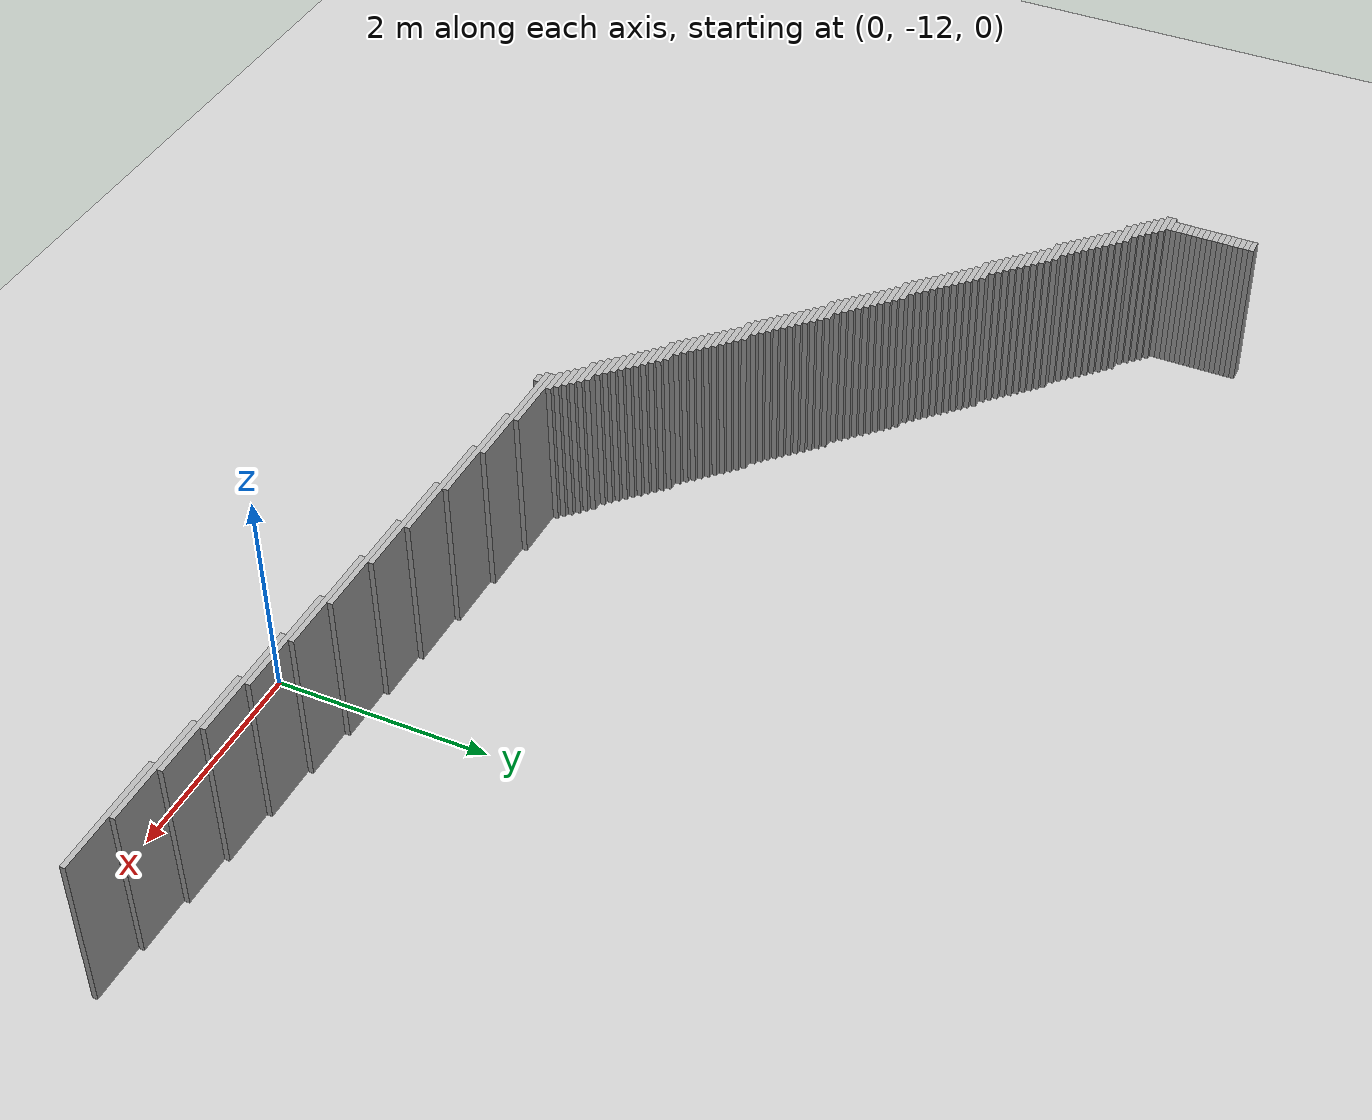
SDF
<sdf version="1.6">
 <world name="df_walled">
  <include><uri>model://sun</uri></include>
  <include><uri>model://ground_plane</uri></include>
  <model name="df_walls">
   <static>true</static>
   <link name="wall_00579">
    <pose>-7.4860 -5.9090 0.7500 0 0 0</pose>
    <collision name="col"><geometry><box><size>0.1500 0.0500 1.5000</size></box></geometry></collision>
    <visual name="vis">
     <geometry><box><size>0.1500 0.0500 1.5000</size></box></geometry>
     <material><ambient>0.5 0.5 0.5 1</ambient><diffuse>0.7 0.7 0.7 1</diffuse></material>
    </visual>
   </link>
   <link name="wall_00581">
    <pose>-7.4860 -5.9590 0.7500 0 0 0</pose>
    <collision name="col"><geometry><box><size>0.1500 0.0500 1.5000</size></box></geometry></collision>
    <visual name="vis">
     <geometry><box><size>0.1500 0.0500 1.5000</size></box></geometry>
     <material><ambient>0.5 0.5 0.5 1</ambient><diffuse>0.7 0.7 0.7 1</diffuse></material>
    </visual>
   </link>
   <link name="wall_00583">
    <pose>-7.4860 -6.0090 0.7500 0 0 0</pose>
    <collision name="col"><geometry><box><size>0.1500 0.0500 1.5000</size></box></geometry></collision>
    <visual name="vis">
     <geometry><box><size>0.1500 0.0500 1.5000</size></box></geometry>
     <material><ambient>0.5 0.5 0.5 1</ambient><diffuse>0.7 0.7 0.7 1</diffuse></material>
    </visual>
   </link>
   <link name="wall_00585">
    <pose>-7.4860 -6.0590 0.7500 0 0 0</pose>
    <collision name="col"><geometry><box><size>0.1500 0.0500 1.5000</size></box></geometry></collision>
    <visual name="vis">
     <geometry><box><size>0.1500 0.0500 1.5000</size></box></geometry>
     <material><ambient>0.5 0.5 0.5 1</ambient><diffuse>0.7 0.7 0.7 1</diffuse></material>
    </visual>
   </link>
   <link name="wall_00587">
    <pose>-7.4860 -6.1090 0.7500 0 0 0</pose>
    <collision name="col"><geometry><box><size>0.1500 0.0500 1.5000</size></box></geometry></collision>
    <visual name="vis">
     <geometry><box><size>0.1500 0.0500 1.5000</size></box></geometry>
     <material><ambient>0.5 0.5 0.5 1</ambient><diffuse>0.7 0.7 0.7 1</diffuse></material>
    </visual>
   </link>
   <link name="wall_00589">
    <pose>-7.4860 -6.1590 0.7500 0 0 0</pose>
    <collision name="col"><geometry><box><size>0.1500 0.0500 1.5000</size></box></geometry></collision>
    <visual name="vis">
     <geometry><box><size>0.1500 0.0500 1.5000</size></box></geometry>
     <material><ambient>0.5 0.5 0.5 1</ambient><diffuse>0.7 0.7 0.7 1</diffuse></material>
    </visual>
   </link>
   <link name="wall_00591">
    <pose>-7.4860 -6.2090 0.7500 0 0 0</pose>
    <collision name="col"><geometry><box><size>0.1500 0.0500 1.5000</size></box></geometry></collision>
    <visual name="vis">
     <geometry><box><size>0.1500 0.0500 1.5000</size></box></geometry>
     <material><ambient>0.5 0.5 0.5 1</ambient><diffuse>0.7 0.7 0.7 1</diffuse></material>
    </visual>
   </link>
   <link name="wall_00593">
    <pose>-7.4860 -6.2590 0.7500 0 0 0</pose>
    <collision name="col"><geometry><box><size>0.1500 0.0500 1.5000</size></box></geometry></collision>
    <visual name="vis">
     <geometry><box><size>0.1500 0.0500 1.5000</size></box></geometry>
     <material><ambient>0.5 0.5 0.5 1</ambient><diffuse>0.7 0.7 0.7 1</diffuse></material>
    </visual>
   </link>
   <link name="wall_00595">
    <pose>-7.4860 -6.3090 0.7500 0 0 0</pose>
    <collision name="col"><geometry><box><size>0.1500 0.0500 1.5000</size></box></geometry></collision>
    <visual name="vis">
     <geometry><box><size>0.1500 0.0500 1.5000</size></box></geometry>
     <material><ambient>0.5 0.5 0.5 1</ambient><diffuse>0.7 0.7 0.7 1</diffuse></material>
    </visual>
   </link>
   <link name="wall_00597">
    <pose>-7.4860 -6.3590 0.7500 0 0 0</pose>
    <collision name="col"><geometry><box><size>0.1500 0.0500 1.5000</size></box></geometry></collision>
    <visual name="vis">
     <geometry><box><size>0.1500 0.0500 1.5000</size></box></geometry>
     <material><ambient>0.5 0.5 0.5 1</ambient><diffuse>0.7 0.7 0.7 1</diffuse></material>
    </visual>
   </link>
   <link name="wall_00599">
    <pose>-7.4860 -6.4090 0.7500 0 0 0</pose>
    <collision name="col"><geometry><box><size>0.1500 0.0500 1.5000</size></box></geometry></collision>
    <visual name="vis">
     <geometry><box><size>0.1500 0.0500 1.5000</size></box></geometry>
     <material><ambient>0.5 0.5 0.5 1</ambient><diffuse>0.7 0.7 0.7 1</diffuse></material>
    </visual>
   </link>
   <link name="wall_00601">
    <pose>-7.4860 -6.4590 0.7500 0 0 0</pose>
    <collision name="col"><geometry><box><size>0.1500 0.0500 1.5000</size></box></geometry></collision>
    <visual name="vis">
     <geometry><box><size>0.1500 0.0500 1.5000</size></box></geometry>
     <material><ambient>0.5 0.5 0.5 1</ambient><diffuse>0.7 0.7 0.7 1</diffuse></material>
    </visual>
   </link>
   <link name="wall_00603">
    <pose>-7.4860 -6.5090 0.7500 0 0 0</pose>
    <collision name="col"><geometry><box><size>0.1500 0.0500 1.5000</size></box></geometry></collision>
    <visual name="vis">
     <geometry><box><size>0.1500 0.0500 1.5000</size></box></geometry>
     <material><ambient>0.5 0.5 0.5 1</ambient><diffuse>0.7 0.7 0.7 1</diffuse></material>
    </visual>
   </link>
   <link name="wall_00605">
    <pose>-7.4860 -6.5590 0.7500 0 0 0</pose>
    <collision name="col"><geometry><box><size>0.1500 0.0500 1.5000</size></box></geometry></collision>
    <visual name="vis">
     <geometry><box><size>0.1500 0.0500 1.5000</size></box></geometry>
     <material><ambient>0.5 0.5 0.5 1</ambient><diffuse>0.7 0.7 0.7 1</diffuse></material>
    </visual>
   </link>
   <link name="wall_00607">
    <pose>-7.4860 -6.6090 0.7500 0 0 0</pose>
    <collision name="col"><geometry><box><size>0.1500 0.0500 1.5000</size></box></geometry></collision>
    <visual name="vis">
     <geometry><box><size>0.1500 0.0500 1.5000</size></box></geometry>
     <material><ambient>0.5 0.5 0.5 1</ambient><diffuse>0.7 0.7 0.7 1</diffuse></material>
    </visual>
   </link>
   <link name="wall_00609">
    <pose>-7.4860 -6.6590 0.7500 0 0 0</pose>
    <collision name="col"><geometry><box><size>0.1500 0.0500 1.5000</size></box></geometry></collision>
    <visual name="vis">
     <geometry><box><size>0.1500 0.0500 1.5000</size></box></geometry>
     <material><ambient>0.5 0.5 0.5 1</ambient><diffuse>0.7 0.7 0.7 1</diffuse></material>
    </visual>
   </link>
   <link name="wall_00611">
    <pose>-7.5110 -6.7090 0.7500 0 0 0</pose>
    <collision name="col"><geometry><box><size>0.2000 0.0500 1.5000</size></box></geometry></collision>
    <visual name="vis">
     <geometry><box><size>0.2000 0.0500 1.5000</size></box></geometry>
     <material><ambient>0.5 0.5 0.5 1</ambient><diffuse>0.7 0.7 0.7 1</diffuse></material>
    </visual>
   </link>
   <link name="wall_00613">
    <pose>-7.4860 -6.7590 0.7500 0 0 0</pose>
    <collision name="col"><geometry><box><size>0.2500 0.0500 1.5000</size></box></geometry></collision>
    <visual name="vis">
     <geometry><box><size>0.2500 0.0500 1.5000</size></box></geometry>
     <material><ambient>0.5 0.5 0.5 1</ambient><diffuse>0.7 0.7 0.7 1</diffuse></material>
    </visual>
   </link>
   <link name="wall_00615">
    <pose>-7.4360 -6.8090 0.7500 0 0 0</pose>
    <collision name="col"><geometry><box><size>0.2500 0.0500 1.5000</size></box></geometry></collision>
    <visual name="vis">
     <geometry><box><size>0.2500 0.0500 1.5000</size></box></geometry>
     <material><ambient>0.5 0.5 0.5 1</ambient><diffuse>0.7 0.7 0.7 1</diffuse></material>
    </visual>
   </link>
   <link name="wall_00617">
    <pose>-7.3860 -6.8590 0.7500 0 0 0</pose>
    <collision name="col"><geometry><box><size>0.2500 0.0500 1.5000</size></box></geometry></collision>
    <visual name="vis">
     <geometry><box><size>0.2500 0.0500 1.5000</size></box></geometry>
     <material><ambient>0.5 0.5 0.5 1</ambient><diffuse>0.7 0.7 0.7 1</diffuse></material>
    </visual>
   </link>
   <link name="wall_00619">
    <pose>-7.3360 -6.9090 0.7500 0 0 0</pose>
    <collision name="col"><geometry><box><size>0.2500 0.0500 1.5000</size></box></geometry></collision>
    <visual name="vis">
     <geometry><box><size>0.2500 0.0500 1.5000</size></box></geometry>
     <material><ambient>0.5 0.5 0.5 1</ambient><diffuse>0.7 0.7 0.7 1</diffuse></material>
    </visual>
   </link>
   <link name="wall_00621">
    <pose>-7.2860 -6.9590 0.7500 0 0 0</pose>
    <collision name="col"><geometry><box><size>0.2500 0.0500 1.5000</size></box></geometry></collision>
    <visual name="vis">
     <geometry><box><size>0.2500 0.0500 1.5000</size></box></geometry>
     <material><ambient>0.5 0.5 0.5 1</ambient><diffuse>0.7 0.7 0.7 1</diffuse></material>
    </visual>
   </link>
   <link name="wall_00623">
    <pose>-7.2110 -7.0090 0.7500 0 0 0</pose>
    <collision name="col"><geometry><box><size>0.3000 0.0500 1.5000</size></box></geometry></collision>
    <visual name="vis">
     <geometry><box><size>0.3000 0.0500 1.5000</size></box></geometry>
     <material><ambient>0.5 0.5 0.5 1</ambient><diffuse>0.7 0.7 0.7 1</diffuse></material>
    </visual>
   </link>
   <link name="wall_00625">
    <pose>-7.1610 -7.0590 0.7500 0 0 0</pose>
    <collision name="col"><geometry><box><size>0.3000 0.0500 1.5000</size></box></geometry></collision>
    <visual name="vis">
     <geometry><box><size>0.3000 0.0500 1.5000</size></box></geometry>
     <material><ambient>0.5 0.5 0.5 1</ambient><diffuse>0.7 0.7 0.7 1</diffuse></material>
    </visual>
   </link>
   <link name="wall_00627">
    <pose>-7.0860 -7.1090 0.7500 0 0 0</pose>
    <collision name="col"><geometry><box><size>0.2500 0.0500 1.5000</size></box></geometry></collision>
    <visual name="vis">
     <geometry><box><size>0.2500 0.0500 1.5000</size></box></geometry>
     <material><ambient>0.5 0.5 0.5 1</ambient><diffuse>0.7 0.7 0.7 1</diffuse></material>
    </visual>
   </link>
   <link name="wall_00629">
    <pose>-7.0360 -7.1590 0.7500 0 0 0</pose>
    <collision name="col"><geometry><box><size>0.2500 0.0500 1.5000</size></box></geometry></collision>
    <visual name="vis">
     <geometry><box><size>0.2500 0.0500 1.5000</size></box></geometry>
     <material><ambient>0.5 0.5 0.5 1</ambient><diffuse>0.7 0.7 0.7 1</diffuse></material>
    </visual>
   </link>
   <link name="wall_00631">
    <pose>-6.9860 -7.2090 0.7500 0 0 0</pose>
    <collision name="col"><geometry><box><size>0.2500 0.0500 1.5000</size></box></geometry></collision>
    <visual name="vis">
     <geometry><box><size>0.2500 0.0500 1.5000</size></box></geometry>
     <material><ambient>0.5 0.5 0.5 1</ambient><diffuse>0.7 0.7 0.7 1</diffuse></material>
    </visual>
   </link>
   <link name="wall_00633">
    <pose>-6.9360 -7.2590 0.7500 0 0 0</pose>
    <collision name="col"><geometry><box><size>0.2500 0.0500 1.5000</size></box></geometry></collision>
    <visual name="vis">
     <geometry><box><size>0.2500 0.0500 1.5000</size></box></geometry>
     <material><ambient>0.5 0.5 0.5 1</ambient><diffuse>0.7 0.7 0.7 1</diffuse></material>
    </visual>
   </link>
   <link name="wall_00635">
    <pose>-6.8860 -7.3090 0.7500 0 0 0</pose>
    <collision name="col"><geometry><box><size>0.2500 0.0500 1.5000</size></box></geometry></collision>
    <visual name="vis">
     <geometry><box><size>0.2500 0.0500 1.5000</size></box></geometry>
     <material><ambient>0.5 0.5 0.5 1</ambient><diffuse>0.7 0.7 0.7 1</diffuse></material>
    </visual>
   </link>
   <link name="wall_00637">
    <pose>-6.8360 -7.3590 0.7500 0 0 0</pose>
    <collision name="col"><geometry><box><size>0.2500 0.0500 1.5000</size></box></geometry></collision>
    <visual name="vis">
     <geometry><box><size>0.2500 0.0500 1.5000</size></box></geometry>
     <material><ambient>0.5 0.5 0.5 1</ambient><diffuse>0.7 0.7 0.7 1</diffuse></material>
    </visual>
   </link>
   <link name="wall_00639">
    <pose>-6.7860 -7.4090 0.7500 0 0 0</pose>
    <collision name="col"><geometry><box><size>0.2500 0.0500 1.5000</size></box></geometry></collision>
    <visual name="vis">
     <geometry><box><size>0.2500 0.0500 1.5000</size></box></geometry>
     <material><ambient>0.5 0.5 0.5 1</ambient><diffuse>0.7 0.7 0.7 1</diffuse></material>
    </visual>
   </link>
   <link name="wall_00641">
    <pose>-6.7360 -7.4590 0.7500 0 0 0</pose>
    <collision name="col"><geometry><box><size>0.2500 0.0500 1.5000</size></box></geometry></collision>
    <visual name="vis">
     <geometry><box><size>0.2500 0.0500 1.5000</size></box></geometry>
     <material><ambient>0.5 0.5 0.5 1</ambient><diffuse>0.7 0.7 0.7 1</diffuse></material>
    </visual>
   </link>
   <link name="wall_00643">
    <pose>-6.6610 -7.5090 0.7500 0 0 0</pose>
    <collision name="col"><geometry><box><size>0.3000 0.0500 1.5000</size></box></geometry></collision>
    <visual name="vis">
     <geometry><box><size>0.3000 0.0500 1.5000</size></box></geometry>
     <material><ambient>0.5 0.5 0.5 1</ambient><diffuse>0.7 0.7 0.7 1</diffuse></material>
    </visual>
   </link>
   <link name="wall_00645">
    <pose>-6.6110 -7.5590 0.7500 0 0 0</pose>
    <collision name="col"><geometry><box><size>0.3000 0.0500 1.5000</size></box></geometry></collision>
    <visual name="vis">
     <geometry><box><size>0.3000 0.0500 1.5000</size></box></geometry>
     <material><ambient>0.5 0.5 0.5 1</ambient><diffuse>0.7 0.7 0.7 1</diffuse></material>
    </visual>
   </link>
   <link name="wall_00647">
    <pose>-6.5360 -7.6090 0.7500 0 0 0</pose>
    <collision name="col"><geometry><box><size>0.2500 0.0500 1.5000</size></box></geometry></collision>
    <visual name="vis">
     <geometry><box><size>0.2500 0.0500 1.5000</size></box></geometry>
     <material><ambient>0.5 0.5 0.5 1</ambient><diffuse>0.7 0.7 0.7 1</diffuse></material>
    </visual>
   </link>
   <link name="wall_00649">
    <pose>-6.4860 -7.6590 0.7500 0 0 0</pose>
    <collision name="col"><geometry><box><size>0.2500 0.0500 1.5000</size></box></geometry></collision>
    <visual name="vis">
     <geometry><box><size>0.2500 0.0500 1.5000</size></box></geometry>
     <material><ambient>0.5 0.5 0.5 1</ambient><diffuse>0.7 0.7 0.7 1</diffuse></material>
    </visual>
   </link>
   <link name="wall_00651">
    <pose>-6.4360 -7.7090 0.7500 0 0 0</pose>
    <collision name="col"><geometry><box><size>0.2500 0.0500 1.5000</size></box></geometry></collision>
    <visual name="vis">
     <geometry><box><size>0.2500 0.0500 1.5000</size></box></geometry>
     <material><ambient>0.5 0.5 0.5 1</ambient><diffuse>0.7 0.7 0.7 1</diffuse></material>
    </visual>
   </link>
   <link name="wall_00653">
    <pose>-6.3860 -7.7590 0.7500 0 0 0</pose>
    <collision name="col"><geometry><box><size>0.2500 0.0500 1.5000</size></box></geometry></collision>
    <visual name="vis">
     <geometry><box><size>0.2500 0.0500 1.5000</size></box></geometry>
     <material><ambient>0.5 0.5 0.5 1</ambient><diffuse>0.7 0.7 0.7 1</diffuse></material>
    </visual>
   </link>
   <link name="wall_00655">
    <pose>-6.3360 -7.8090 0.7500 0 0 0</pose>
    <collision name="col"><geometry><box><size>0.2500 0.0500 1.5000</size></box></geometry></collision>
    <visual name="vis">
     <geometry><box><size>0.2500 0.0500 1.5000</size></box></geometry>
     <material><ambient>0.5 0.5 0.5 1</ambient><diffuse>0.7 0.7 0.7 1</diffuse></material>
    </visual>
   </link>
   <link name="wall_00657">
    <pose>-6.2860 -7.8590 0.7500 0 0 0</pose>
    <collision name="col"><geometry><box><size>0.2500 0.0500 1.5000</size></box></geometry></collision>
    <visual name="vis">
     <geometry><box><size>0.2500 0.0500 1.5000</size></box></geometry>
     <material><ambient>0.5 0.5 0.5 1</ambient><diffuse>0.7 0.7 0.7 1</diffuse></material>
    </visual>
   </link>
   <link name="wall_00659">
    <pose>-6.2360 -7.9090 0.7500 0 0 0</pose>
    <collision name="col"><geometry><box><size>0.2500 0.0500 1.5000</size></box></geometry></collision>
    <visual name="vis">
     <geometry><box><size>0.2500 0.0500 1.5000</size></box></geometry>
     <material><ambient>0.5 0.5 0.5 1</ambient><diffuse>0.7 0.7 0.7 1</diffuse></material>
    </visual>
   </link>
   <link name="wall_00661">
    <pose>-6.1860 -7.9590 0.7500 0 0 0</pose>
    <collision name="col"><geometry><box><size>0.2500 0.0500 1.5000</size></box></geometry></collision>
    <visual name="vis">
     <geometry><box><size>0.2500 0.0500 1.5000</size></box></geometry>
     <material><ambient>0.5 0.5 0.5 1</ambient><diffuse>0.7 0.7 0.7 1</diffuse></material>
    </visual>
   </link>
   <link name="wall_00663">
    <pose>-6.1110 -8.0090 0.7500 0 0 0</pose>
    <collision name="col"><geometry><box><size>0.3000 0.0500 1.5000</size></box></geometry></collision>
    <visual name="vis">
     <geometry><box><size>0.3000 0.0500 1.5000</size></box></geometry>
     <material><ambient>0.5 0.5 0.5 1</ambient><diffuse>0.7 0.7 0.7 1</diffuse></material>
    </visual>
   </link>
   <link name="wall_00666">
    <pose>-6.0610 -8.0590 0.7500 0 0 0</pose>
    <collision name="col"><geometry><box><size>0.3000 0.0500 1.5000</size></box></geometry></collision>
    <visual name="vis">
     <geometry><box><size>0.3000 0.0500 1.5000</size></box></geometry>
     <material><ambient>0.5 0.5 0.5 1</ambient><diffuse>0.7 0.7 0.7 1</diffuse></material>
    </visual>
   </link>
   <link name="wall_00669">
    <pose>-5.9860 -8.1090 0.7500 0 0 0</pose>
    <collision name="col"><geometry><box><size>0.2500 0.0500 1.5000</size></box></geometry></collision>
    <visual name="vis">
     <geometry><box><size>0.2500 0.0500 1.5000</size></box></geometry>
     <material><ambient>0.5 0.5 0.5 1</ambient><diffuse>0.7 0.7 0.7 1</diffuse></material>
    </visual>
   </link>
   <link name="wall_00672">
    <pose>-5.9360 -8.1590 0.7500 0 0 0</pose>
    <collision name="col"><geometry><box><size>0.2500 0.0500 1.5000</size></box></geometry></collision>
    <visual name="vis">
     <geometry><box><size>0.2500 0.0500 1.5000</size></box></geometry>
     <material><ambient>0.5 0.5 0.5 1</ambient><diffuse>0.7 0.7 0.7 1</diffuse></material>
    </visual>
   </link>
   <link name="wall_00675">
    <pose>-5.8860 -8.2090 0.7500 0 0 0</pose>
    <collision name="col"><geometry><box><size>0.2500 0.0500 1.5000</size></box></geometry></collision>
    <visual name="vis">
     <geometry><box><size>0.2500 0.0500 1.5000</size></box></geometry>
     <material><ambient>0.5 0.5 0.5 1</ambient><diffuse>0.7 0.7 0.7 1</diffuse></material>
    </visual>
   </link>
   <link name="wall_00678">
    <pose>-5.8360 -8.2590 0.7500 0 0 0</pose>
    <collision name="col"><geometry><box><size>0.2500 0.0500 1.5000</size></box></geometry></collision>
    <visual name="vis">
     <geometry><box><size>0.2500 0.0500 1.5000</size></box></geometry>
     <material><ambient>0.5 0.5 0.5 1</ambient><diffuse>0.7 0.7 0.7 1</diffuse></material>
    </visual>
   </link>
   <link name="wall_00681">
    <pose>-5.7860 -8.3090 0.7500 0 0 0</pose>
    <collision name="col"><geometry><box><size>0.2500 0.0500 1.5000</size></box></geometry></collision>
    <visual name="vis">
     <geometry><box><size>0.2500 0.0500 1.5000</size></box></geometry>
     <material><ambient>0.5 0.5 0.5 1</ambient><diffuse>0.7 0.7 0.7 1</diffuse></material>
    </visual>
   </link>
   <link name="wall_00684">
    <pose>-5.7360 -8.3590 0.7500 0 0 0</pose>
    <collision name="col"><geometry><box><size>0.2500 0.0500 1.5000</size></box></geometry></collision>
    <visual name="vis">
     <geometry><box><size>0.2500 0.0500 1.5000</size></box></geometry>
     <material><ambient>0.5 0.5 0.5 1</ambient><diffuse>0.7 0.7 0.7 1</diffuse></material>
    </visual>
   </link>
   <link name="wall_00687">
    <pose>-5.6860 -8.4090 0.7500 0 0 0</pose>
    <collision name="col"><geometry><box><size>0.2500 0.0500 1.5000</size></box></geometry></collision>
    <visual name="vis">
     <geometry><box><size>0.2500 0.0500 1.5000</size></box></geometry>
     <material><ambient>0.5 0.5 0.5 1</ambient><diffuse>0.7 0.7 0.7 1</diffuse></material>
    </visual>
   </link>
   <link name="wall_00690">
    <pose>-5.6360 -8.4590 0.7500 0 0 0</pose>
    <collision name="col"><geometry><box><size>0.2500 0.0500 1.5000</size></box></geometry></collision>
    <visual name="vis">
     <geometry><box><size>0.2500 0.0500 1.5000</size></box></geometry>
     <material><ambient>0.5 0.5 0.5 1</ambient><diffuse>0.7 0.7 0.7 1</diffuse></material>
    </visual>
   </link>
   <link name="wall_00693">
    <pose>-5.5860 -8.5090 0.7500 0 0 0</pose>
    <collision name="col"><geometry><box><size>0.2500 0.0500 1.5000</size></box></geometry></collision>
    <visual name="vis">
     <geometry><box><size>0.2500 0.0500 1.5000</size></box></geometry>
     <material><ambient>0.5 0.5 0.5 1</ambient><diffuse>0.7 0.7 0.7 1</diffuse></material>
    </visual>
   </link>
   <link name="wall_00696">
    <pose>-5.5110 -8.5590 0.7500 0 0 0</pose>
    <collision name="col"><geometry><box><size>0.3000 0.0500 1.5000</size></box></geometry></collision>
    <visual name="vis">
     <geometry><box><size>0.3000 0.0500 1.5000</size></box></geometry>
     <material><ambient>0.5 0.5 0.5 1</ambient><diffuse>0.7 0.7 0.7 1</diffuse></material>
    </visual>
   </link>
   <link name="wall_00699">
    <pose>-5.4610 -8.6090 0.7500 0 0 0</pose>
    <collision name="col"><geometry><box><size>0.3000 0.0500 1.5000</size></box></geometry></collision>
    <visual name="vis">
     <geometry><box><size>0.3000 0.0500 1.5000</size></box></geometry>
     <material><ambient>0.5 0.5 0.5 1</ambient><diffuse>0.7 0.7 0.7 1</diffuse></material>
    </visual>
   </link>
   <link name="wall_00702">
    <pose>-5.3860 -8.6590 0.7500 0 0 0</pose>
    <collision name="col"><geometry><box><size>0.2500 0.0500 1.5000</size></box></geometry></collision>
    <visual name="vis">
     <geometry><box><size>0.2500 0.0500 1.5000</size></box></geometry>
     <material><ambient>0.5 0.5 0.5 1</ambient><diffuse>0.7 0.7 0.7 1</diffuse></material>
    </visual>
   </link>
   <link name="wall_00705">
    <pose>-5.3360 -8.7090 0.7500 0 0 0</pose>
    <collision name="col"><geometry><box><size>0.2500 0.0500 1.5000</size></box></geometry></collision>
    <visual name="vis">
     <geometry><box><size>0.2500 0.0500 1.5000</size></box></geometry>
     <material><ambient>0.5 0.5 0.5 1</ambient><diffuse>0.7 0.7 0.7 1</diffuse></material>
    </visual>
   </link>
   <link name="wall_00708">
    <pose>-5.2860 -8.7590 0.7500 0 0 0</pose>
    <collision name="col"><geometry><box><size>0.2500 0.0500 1.5000</size></box></geometry></collision>
    <visual name="vis">
     <geometry><box><size>0.2500 0.0500 1.5000</size></box></geometry>
     <material><ambient>0.5 0.5 0.5 1</ambient><diffuse>0.7 0.7 0.7 1</diffuse></material>
    </visual>
   </link>
   <link name="wall_00711">
    <pose>-5.2360 -8.8090 0.7500 0 0 0</pose>
    <collision name="col"><geometry><box><size>0.2500 0.0500 1.5000</size></box></geometry></collision>
    <visual name="vis">
     <geometry><box><size>0.2500 0.0500 1.5000</size></box></geometry>
     <material><ambient>0.5 0.5 0.5 1</ambient><diffuse>0.7 0.7 0.7 1</diffuse></material>
    </visual>
   </link>
   <link name="wall_00714">
    <pose>-5.1860 -8.8590 0.7500 0 0 0</pose>
    <collision name="col"><geometry><box><size>0.2500 0.0500 1.5000</size></box></geometry></collision>
    <visual name="vis">
     <geometry><box><size>0.2500 0.0500 1.5000</size></box></geometry>
     <material><ambient>0.5 0.5 0.5 1</ambient><diffuse>0.7 0.7 0.7 1</diffuse></material>
    </visual>
   </link>
   <link name="wall_00717">
    <pose>-5.1360 -8.9090 0.7500 0 0 0</pose>
    <collision name="col"><geometry><box><size>0.2500 0.0500 1.5000</size></box></geometry></collision>
    <visual name="vis">
     <geometry><box><size>0.2500 0.0500 1.5000</size></box></geometry>
     <material><ambient>0.5 0.5 0.5 1</ambient><diffuse>0.7 0.7 0.7 1</diffuse></material>
    </visual>
   </link>
   <link name="wall_00720">
    <pose>-5.0860 -8.9590 0.7500 0 0 0</pose>
    <collision name="col"><geometry><box><size>0.2500 0.0500 1.5000</size></box></geometry></collision>
    <visual name="vis">
     <geometry><box><size>0.2500 0.0500 1.5000</size></box></geometry>
     <material><ambient>0.5 0.5 0.5 1</ambient><diffuse>0.7 0.7 0.7 1</diffuse></material>
    </visual>
   </link>
   <link name="wall_00723">
    <pose>-5.0360 -9.0090 0.7500 0 0 0</pose>
    <collision name="col"><geometry><box><size>0.2500 0.0500 1.5000</size></box></geometry></collision>
    <visual name="vis">
     <geometry><box><size>0.2500 0.0500 1.5000</size></box></geometry>
     <material><ambient>0.5 0.5 0.5 1</ambient><diffuse>0.7 0.7 0.7 1</diffuse></material>
    </visual>
   </link>
   <link name="wall_00726">
    <pose>-4.9610 -9.0590 0.7500 0 0 0</pose>
    <collision name="col"><geometry><box><size>0.3000 0.0500 1.5000</size></box></geometry></collision>
    <visual name="vis">
     <geometry><box><size>0.3000 0.0500 1.5000</size></box></geometry>
     <material><ambient>0.5 0.5 0.5 1</ambient><diffuse>0.7 0.7 0.7 1</diffuse></material>
    </visual>
   </link>
   <link name="wall_00729">
    <pose>-4.9110 -9.1090 0.7500 0 0 0</pose>
    <collision name="col"><geometry><box><size>0.3000 0.0500 1.5000</size></box></geometry></collision>
    <visual name="vis">
     <geometry><box><size>0.3000 0.0500 1.5000</size></box></geometry>
     <material><ambient>0.5 0.5 0.5 1</ambient><diffuse>0.7 0.7 0.7 1</diffuse></material>
    </visual>
   </link>
   <link name="wall_00732">
    <pose>-4.8360 -9.1590 0.7500 0 0 0</pose>
    <collision name="col"><geometry><box><size>0.2500 0.0500 1.5000</size></box></geometry></collision>
    <visual name="vis">
     <geometry><box><size>0.2500 0.0500 1.5000</size></box></geometry>
     <material><ambient>0.5 0.5 0.5 1</ambient><diffuse>0.7 0.7 0.7 1</diffuse></material>
    </visual>
   </link>
   <link name="wall_00735">
    <pose>-4.7860 -9.2090 0.7500 0 0 0</pose>
    <collision name="col"><geometry><box><size>0.2500 0.0500 1.5000</size></box></geometry></collision>
    <visual name="vis">
     <geometry><box><size>0.2500 0.0500 1.5000</size></box></geometry>
     <material><ambient>0.5 0.5 0.5 1</ambient><diffuse>0.7 0.7 0.7 1</diffuse></material>
    </visual>
   </link>
   <link name="wall_00738">
    <pose>-4.7360 -9.2590 0.7500 0 0 0</pose>
    <collision name="col"><geometry><box><size>0.2500 0.0500 1.5000</size></box></geometry></collision>
    <visual name="vis">
     <geometry><box><size>0.2500 0.0500 1.5000</size></box></geometry>
     <material><ambient>0.5 0.5 0.5 1</ambient><diffuse>0.7 0.7 0.7 1</diffuse></material>
    </visual>
   </link>
   <link name="wall_00741">
    <pose>-4.6860 -9.3090 0.7500 0 0 0</pose>
    <collision name="col"><geometry><box><size>0.2500 0.0500 1.5000</size></box></geometry></collision>
    <visual name="vis">
     <geometry><box><size>0.2500 0.0500 1.5000</size></box></geometry>
     <material><ambient>0.5 0.5 0.5 1</ambient><diffuse>0.7 0.7 0.7 1</diffuse></material>
    </visual>
   </link>
   <link name="wall_00744">
    <pose>-4.6360 -9.3590 0.7500 0 0 0</pose>
    <collision name="col"><geometry><box><size>0.2500 0.0500 1.5000</size></box></geometry></collision>
    <visual name="vis">
     <geometry><box><size>0.2500 0.0500 1.5000</size></box></geometry>
     <material><ambient>0.5 0.5 0.5 1</ambient><diffuse>0.7 0.7 0.7 1</diffuse></material>
    </visual>
   </link>
   <link name="wall_00747">
    <pose>-4.5860 -9.4090 0.7500 0 0 0</pose>
    <collision name="col"><geometry><box><size>0.2500 0.0500 1.5000</size></box></geometry></collision>
    <visual name="vis">
     <geometry><box><size>0.2500 0.0500 1.5000</size></box></geometry>
     <material><ambient>0.5 0.5 0.5 1</ambient><diffuse>0.7 0.7 0.7 1</diffuse></material>
    </visual>
   </link>
   <link name="wall_00750">
    <pose>-4.5360 -9.4590 0.7500 0 0 0</pose>
    <collision name="col"><geometry><box><size>0.2500 0.0500 1.5000</size></box></geometry></collision>
    <visual name="vis">
     <geometry><box><size>0.2500 0.0500 1.5000</size></box></geometry>
     <material><ambient>0.5 0.5 0.5 1</ambient><diffuse>0.7 0.7 0.7 1</diffuse></material>
    </visual>
   </link>
   <link name="wall_00753">
    <pose>-4.4860 -9.5090 0.7500 0 0 0</pose>
    <collision name="col"><geometry><box><size>0.2500 0.0500 1.5000</size></box></geometry></collision>
    <visual name="vis">
     <geometry><box><size>0.2500 0.0500 1.5000</size></box></geometry>
     <material><ambient>0.5 0.5 0.5 1</ambient><diffuse>0.7 0.7 0.7 1</diffuse></material>
    </visual>
   </link>
   <link name="wall_00756">
    <pose>-4.4360 -9.5590 0.7500 0 0 0</pose>
    <collision name="col"><geometry><box><size>0.2500 0.0500 1.5000</size></box></geometry></collision>
    <visual name="vis">
     <geometry><box><size>0.2500 0.0500 1.5000</size></box></geometry>
     <material><ambient>0.5 0.5 0.5 1</ambient><diffuse>0.7 0.7 0.7 1</diffuse></material>
    </visual>
   </link>
   <link name="wall_00759">
    <pose>-4.3610 -9.6090 0.7500 0 0 0</pose>
    <collision name="col"><geometry><box><size>0.3000 0.0500 1.5000</size></box></geometry></collision>
    <visual name="vis">
     <geometry><box><size>0.3000 0.0500 1.5000</size></box></geometry>
     <material><ambient>0.5 0.5 0.5 1</ambient><diffuse>0.7 0.7 0.7 1</diffuse></material>
    </visual>
   </link>
   <link name="wall_00762">
    <pose>-4.3110 -9.6590 0.7500 0 0 0</pose>
    <collision name="col"><geometry><box><size>0.3000 0.0500 1.5000</size></box></geometry></collision>
    <visual name="vis">
     <geometry><box><size>0.3000 0.0500 1.5000</size></box></geometry>
     <material><ambient>0.5 0.5 0.5 1</ambient><diffuse>0.7 0.7 0.7 1</diffuse></material>
    </visual>
   </link>
   <link name="wall_00765">
    <pose>-4.2360 -9.7090 0.7500 0 0 0</pose>
    <collision name="col"><geometry><box><size>0.2500 0.0500 1.5000</size></box></geometry></collision>
    <visual name="vis">
     <geometry><box><size>0.2500 0.0500 1.5000</size></box></geometry>
     <material><ambient>0.5 0.5 0.5 1</ambient><diffuse>0.7 0.7 0.7 1</diffuse></material>
    </visual>
   </link>
   <link name="wall_00768">
    <pose>-4.1860 -9.7590 0.7500 0 0 0</pose>
    <collision name="col"><geometry><box><size>0.2500 0.0500 1.5000</size></box></geometry></collision>
    <visual name="vis">
     <geometry><box><size>0.2500 0.0500 1.5000</size></box></geometry>
     <material><ambient>0.5 0.5 0.5 1</ambient><diffuse>0.7 0.7 0.7 1</diffuse></material>
    </visual>
   </link>
   <link name="wall_00771">
    <pose>-4.1360 -9.8090 0.7500 0 0 0</pose>
    <collision name="col"><geometry><box><size>0.2500 0.0500 1.5000</size></box></geometry></collision>
    <visual name="vis">
     <geometry><box><size>0.2500 0.0500 1.5000</size></box></geometry>
     <material><ambient>0.5 0.5 0.5 1</ambient><diffuse>0.7 0.7 0.7 1</diffuse></material>
    </visual>
   </link>
   <link name="wall_00774">
    <pose>-4.0860 -9.8590 0.7500 0 0 0</pose>
    <collision name="col"><geometry><box><size>0.2500 0.0500 1.5000</size></box></geometry></collision>
    <visual name="vis">
     <geometry><box><size>0.2500 0.0500 1.5000</size></box></geometry>
     <material><ambient>0.5 0.5 0.5 1</ambient><diffuse>0.7 0.7 0.7 1</diffuse></material>
    </visual>
   </link>
   <link name="wall_00777">
    <pose>-4.0360 -9.9090 0.7500 0 0 0</pose>
    <collision name="col"><geometry><box><size>0.2500 0.0500 1.5000</size></box></geometry></collision>
    <visual name="vis">
     <geometry><box><size>0.2500 0.0500 1.5000</size></box></geometry>
     <material><ambient>0.5 0.5 0.5 1</ambient><diffuse>0.7 0.7 0.7 1</diffuse></material>
    </visual>
   </link>
   <link name="wall_00780">
    <pose>-3.9860 -9.9590 0.7500 0 0 0</pose>
    <collision name="col"><geometry><box><size>0.2500 0.0500 1.5000</size></box></geometry></collision>
    <visual name="vis">
     <geometry><box><size>0.2500 0.0500 1.5000</size></box></geometry>
     <material><ambient>0.5 0.5 0.5 1</ambient><diffuse>0.7 0.7 0.7 1</diffuse></material>
    </visual>
   </link>
   <link name="wall_00783">
    <pose>-3.9360 -10.0090 0.7500 0 0 0</pose>
    <collision name="col"><geometry><box><size>0.2500 0.0500 1.5000</size></box></geometry></collision>
    <visual name="vis">
     <geometry><box><size>0.2500 0.0500 1.5000</size></box></geometry>
     <material><ambient>0.5 0.5 0.5 1</ambient><diffuse>0.7 0.7 0.7 1</diffuse></material>
    </visual>
   </link>
   <link name="wall_00786">
    <pose>-3.8860 -10.0590 0.7500 0 0 0</pose>
    <collision name="col"><geometry><box><size>0.2500 0.0500 1.5000</size></box></geometry></collision>
    <visual name="vis">
     <geometry><box><size>0.2500 0.0500 1.5000</size></box></geometry>
     <material><ambient>0.5 0.5 0.5 1</ambient><diffuse>0.7 0.7 0.7 1</diffuse></material>
    </visual>
   </link>
   <link name="wall_00789">
    <pose>-3.8110 -10.1090 0.7500 0 0 0</pose>
    <collision name="col"><geometry><box><size>0.3000 0.0500 1.5000</size></box></geometry></collision>
    <visual name="vis">
     <geometry><box><size>0.3000 0.0500 1.5000</size></box></geometry>
     <material><ambient>0.5 0.5 0.5 1</ambient><diffuse>0.7 0.7 0.7 1</diffuse></material>
    </visual>
   </link>
   <link name="wall_00792">
    <pose>-3.7610 -10.1590 0.7500 0 0 0</pose>
    <collision name="col"><geometry><box><size>0.3000 0.0500 1.5000</size></box></geometry></collision>
    <visual name="vis">
     <geometry><box><size>0.3000 0.0500 1.5000</size></box></geometry>
     <material><ambient>0.5 0.5 0.5 1</ambient><diffuse>0.7 0.7 0.7 1</diffuse></material>
    </visual>
   </link>
   <link name="wall_00795">
    <pose>-3.6860 -10.2090 0.7500 0 0 0</pose>
    <collision name="col"><geometry><box><size>0.2500 0.0500 1.5000</size></box></geometry></collision>
    <visual name="vis">
     <geometry><box><size>0.2500 0.0500 1.5000</size></box></geometry>
     <material><ambient>0.5 0.5 0.5 1</ambient><diffuse>0.7 0.7 0.7 1</diffuse></material>
    </visual>
   </link>
   <link name="wall_00798">
    <pose>-3.6360 -10.2590 0.7500 0 0 0</pose>
    <collision name="col"><geometry><box><size>0.2500 0.0500 1.5000</size></box></geometry></collision>
    <visual name="vis">
     <geometry><box><size>0.2500 0.0500 1.5000</size></box></geometry>
     <material><ambient>0.5 0.5 0.5 1</ambient><diffuse>0.7 0.7 0.7 1</diffuse></material>
    </visual>
   </link>
   <link name="wall_00801">
    <pose>-3.5860 -10.3090 0.7500 0 0 0</pose>
    <collision name="col"><geometry><box><size>0.2500 0.0500 1.5000</size></box></geometry></collision>
    <visual name="vis">
     <geometry><box><size>0.2500 0.0500 1.5000</size></box></geometry>
     <material><ambient>0.5 0.5 0.5 1</ambient><diffuse>0.7 0.7 0.7 1</diffuse></material>
    </visual>
   </link>
   <link name="wall_00804">
    <pose>-3.5360 -10.3590 0.7500 0 0 0</pose>
    <collision name="col"><geometry><box><size>0.2500 0.0500 1.5000</size></box></geometry></collision>
    <visual name="vis">
     <geometry><box><size>0.2500 0.0500 1.5000</size></box></geometry>
     <material><ambient>0.5 0.5 0.5 1</ambient><diffuse>0.7 0.7 0.7 1</diffuse></material>
    </visual>
   </link>
   <link name="wall_00807">
    <pose>-3.4860 -10.4090 0.7500 0 0 0</pose>
    <collision name="col"><geometry><box><size>0.2500 0.0500 1.5000</size></box></geometry></collision>
    <visual name="vis">
     <geometry><box><size>0.2500 0.0500 1.5000</size></box></geometry>
     <material><ambient>0.5 0.5 0.5 1</ambient><diffuse>0.7 0.7 0.7 1</diffuse></material>
    </visual>
   </link>
   <link name="wall_00810">
    <pose>-3.4360 -10.4590 0.7500 0 0 0</pose>
    <collision name="col"><geometry><box><size>0.2500 0.0500 1.5000</size></box></geometry></collision>
    <visual name="vis">
     <geometry><box><size>0.2500 0.0500 1.5000</size></box></geometry>
     <material><ambient>0.5 0.5 0.5 1</ambient><diffuse>0.7 0.7 0.7 1</diffuse></material>
    </visual>
   </link>
   <link name="wall_00813">
    <pose>-3.3860 -10.5090 0.7500 0 0 0</pose>
    <collision name="col"><geometry><box><size>0.2500 0.0500 1.5000</size></box></geometry></collision>
    <visual name="vis">
     <geometry><box><size>0.2500 0.0500 1.5000</size></box></geometry>
     <material><ambient>0.5 0.5 0.5 1</ambient><diffuse>0.7 0.7 0.7 1</diffuse></material>
    </visual>
   </link>
   <link name="wall_00816">
    <pose>-3.3360 -10.5590 0.7500 0 0 0</pose>
    <collision name="col"><geometry><box><size>0.2500 0.0500 1.5000</size></box></geometry></collision>
    <visual name="vis">
     <geometry><box><size>0.2500 0.0500 1.5000</size></box></geometry>
     <material><ambient>0.5 0.5 0.5 1</ambient><diffuse>0.7 0.7 0.7 1</diffuse></material>
    </visual>
   </link>
   <link name="wall_00819">
    <pose>-3.2610 -10.6090 0.7500 0 0 0</pose>
    <collision name="col"><geometry><box><size>0.3000 0.0500 1.5000</size></box></geometry></collision>
    <visual name="vis">
     <geometry><box><size>0.3000 0.0500 1.5000</size></box></geometry>
     <material><ambient>0.5 0.5 0.5 1</ambient><diffuse>0.7 0.7 0.7 1</diffuse></material>
    </visual>
   </link>
   <link name="wall_00822">
    <pose>-3.2110 -10.6590 0.7500 0 0 0</pose>
    <collision name="col"><geometry><box><size>0.3000 0.0500 1.5000</size></box></geometry></collision>
    <visual name="vis">
     <geometry><box><size>0.3000 0.0500 1.5000</size></box></geometry>
     <material><ambient>0.5 0.5 0.5 1</ambient><diffuse>0.7 0.7 0.7 1</diffuse></material>
    </visual>
   </link>
   <link name="wall_00825">
    <pose>-3.1360 -10.7090 0.7500 0 0 0</pose>
    <collision name="col"><geometry><box><size>0.2500 0.0500 1.5000</size></box></geometry></collision>
    <visual name="vis">
     <geometry><box><size>0.2500 0.0500 1.5000</size></box></geometry>
     <material><ambient>0.5 0.5 0.5 1</ambient><diffuse>0.7 0.7 0.7 1</diffuse></material>
    </visual>
   </link>
   <link name="wall_00828">
    <pose>-3.0860 -10.7590 0.7500 0 0 0</pose>
    <collision name="col"><geometry><box><size>0.2500 0.0500 1.5000</size></box></geometry></collision>
    <visual name="vis">
     <geometry><box><size>0.2500 0.0500 1.5000</size></box></geometry>
     <material><ambient>0.5 0.5 0.5 1</ambient><diffuse>0.7 0.7 0.7 1</diffuse></material>
    </visual>
   </link>
   <link name="wall_00831">
    <pose>-3.0360 -10.8090 0.7500 0 0 0</pose>
    <collision name="col"><geometry><box><size>0.2500 0.0500 1.5000</size></box></geometry></collision>
    <visual name="vis">
     <geometry><box><size>0.2500 0.0500 1.5000</size></box></geometry>
     <material><ambient>0.5 0.5 0.5 1</ambient><diffuse>0.7 0.7 0.7 1</diffuse></material>
    </visual>
   </link>
   <link name="wall_00834">
    <pose>-2.9860 -10.8590 0.7500 0 0 0</pose>
    <collision name="col"><geometry><box><size>0.2500 0.0500 1.5000</size></box></geometry></collision>
    <visual name="vis">
     <geometry><box><size>0.2500 0.0500 1.5000</size></box></geometry>
     <material><ambient>0.5 0.5 0.5 1</ambient><diffuse>0.7 0.7 0.7 1</diffuse></material>
    </visual>
   </link>
   <link name="wall_00837">
    <pose>-2.7110 -10.9090 0.7500 0 0 0</pose>
    <collision name="col"><geometry><box><size>0.7000 0.0500 1.5000</size></box></geometry></collision>
    <visual name="vis">
     <geometry><box><size>0.7000 0.0500 1.5000</size></box></geometry>
     <material><ambient>0.5 0.5 0.5 1</ambient><diffuse>0.7 0.7 0.7 1</diffuse></material>
    </visual>
   </link>
   <link name="wall_00840">
    <pose>-2.4610 -10.9590 0.7500 0 0 0</pose>
    <collision name="col"><geometry><box><size>1.2000 0.0500 1.5000</size></box></geometry></collision>
    <visual name="vis">
     <geometry><box><size>1.2000 0.0500 1.5000</size></box></geometry>
     <material><ambient>0.5 0.5 0.5 1</ambient><diffuse>0.7 0.7 0.7 1</diffuse></material>
    </visual>
   </link>
   <link name="wall_00843">
    <pose>-2.9610 -11.0090 0.7500 0 0 0</pose>
    <collision name="col"><geometry><box><size>0.1000 0.0500 1.5000</size></box></geometry></collision>
    <visual name="vis">
     <geometry><box><size>0.1000 0.0500 1.5000</size></box></geometry>
     <material><ambient>0.5 0.5 0.5 1</ambient><diffuse>0.7 0.7 0.7 1</diffuse></material>
    </visual>
   </link>
   <link name="wall_00844">
    <pose>-1.8610 -11.0090 0.7500 0 0 0</pose>
    <collision name="col"><geometry><box><size>1.1000 0.0500 1.5000</size></box></geometry></collision>
    <visual name="vis">
     <geometry><box><size>1.1000 0.0500 1.5000</size></box></geometry>
     <material><ambient>0.5 0.5 0.5 1</ambient><diffuse>0.7 0.7 0.7 1</diffuse></material>
    </visual>
   </link>
   <link name="wall_00847">
    <pose>-1.3360 -11.0590 0.7500 0 0 0</pose>
    <collision name="col"><geometry><box><size>1.1500 0.0500 1.5000</size></box></geometry></collision>
    <visual name="vis">
     <geometry><box><size>1.1500 0.0500 1.5000</size></box></geometry>
     <material><ambient>0.5 0.5 0.5 1</ambient><diffuse>0.7 0.7 0.7 1</diffuse></material>
    </visual>
   </link>
   <link name="wall_00850">
    <pose>-0.8110 -11.1090 0.7500 0 0 0</pose>
    <collision name="col"><geometry><box><size>1.1000 0.0500 1.5000</size></box></geometry></collision>
    <visual name="vis">
     <geometry><box><size>1.1000 0.0500 1.5000</size></box></geometry>
     <material><ambient>0.5 0.5 0.5 1</ambient><diffuse>0.7 0.7 0.7 1</diffuse></material>
    </visual>
   </link>
   <link name="wall_00853">
    <pose>-0.2610 -11.1590 0.7500 0 0 0</pose>
    <collision name="col"><geometry><box><size>1.1000 0.0500 1.5000</size></box></geometry></collision>
    <visual name="vis">
     <geometry><box><size>1.1000 0.0500 1.5000</size></box></geometry>
     <material><ambient>0.5 0.5 0.5 1</ambient><diffuse>0.7 0.7 0.7 1</diffuse></material>
    </visual>
   </link>
   <link name="wall_00856">
    <pose>0.2390 -11.2090 0.7500 0 0 0</pose>
    <collision name="col"><geometry><box><size>1.1000 0.0500 1.5000</size></box></geometry></collision>
    <visual name="vis">
     <geometry><box><size>1.1000 0.0500 1.5000</size></box></geometry>
     <material><ambient>0.5 0.5 0.5 1</ambient><diffuse>0.7 0.7 0.7 1</diffuse></material>
    </visual>
   </link>
   <link name="wall_00859">
    <pose>0.7890 -11.2590 0.7500 0 0 0</pose>
    <collision name="col"><geometry><box><size>1.1000 0.0500 1.5000</size></box></geometry></collision>
    <visual name="vis">
     <geometry><box><size>1.1000 0.0500 1.5000</size></box></geometry>
     <material><ambient>0.5 0.5 0.5 1</ambient><diffuse>0.7 0.7 0.7 1</diffuse></material>
    </visual>
   </link>
   <link name="wall_00862">
    <pose>1.3140 -11.3090 0.7500 0 0 0</pose>
    <collision name="col"><geometry><box><size>1.1500 0.0500 1.5000</size></box></geometry></collision>
    <visual name="vis">
     <geometry><box><size>1.1500 0.0500 1.5000</size></box></geometry>
     <material><ambient>0.5 0.5 0.5 1</ambient><diffuse>0.7 0.7 0.7 1</diffuse></material>
    </visual>
   </link>
   <link name="wall_00865">
    <pose>1.8390 -11.3590 0.7500 0 0 0</pose>
    <collision name="col"><geometry><box><size>1.1000 0.0500 1.5000</size></box></geometry></collision>
    <visual name="vis">
     <geometry><box><size>1.1000 0.0500 1.5000</size></box></geometry>
     <material><ambient>0.5 0.5 0.5 1</ambient><diffuse>0.7 0.7 0.7 1</diffuse></material>
    </visual>
   </link>
   <link name="wall_00868">
    <pose>2.3890 -11.4090 0.7500 0 0 0</pose>
    <collision name="col"><geometry><box><size>1.1000 0.0500 1.5000</size></box></geometry></collision>
    <visual name="vis">
     <geometry><box><size>1.1000 0.0500 1.5000</size></box></geometry>
     <material><ambient>0.5 0.5 0.5 1</ambient><diffuse>0.7 0.7 0.7 1</diffuse></material>
    </visual>
   </link>
   <link name="wall_00871">
    <pose>2.9140 -11.4590 0.7500 0 0 0</pose>
    <collision name="col"><geometry><box><size>1.1500 0.0500 1.5000</size></box></geometry></collision>
    <visual name="vis">
     <geometry><box><size>1.1500 0.0500 1.5000</size></box></geometry>
     <material><ambient>0.5 0.5 0.5 1</ambient><diffuse>0.7 0.7 0.7 1</diffuse></material>
    </visual>
   </link>
  </model>
 </world>
</sdf>
